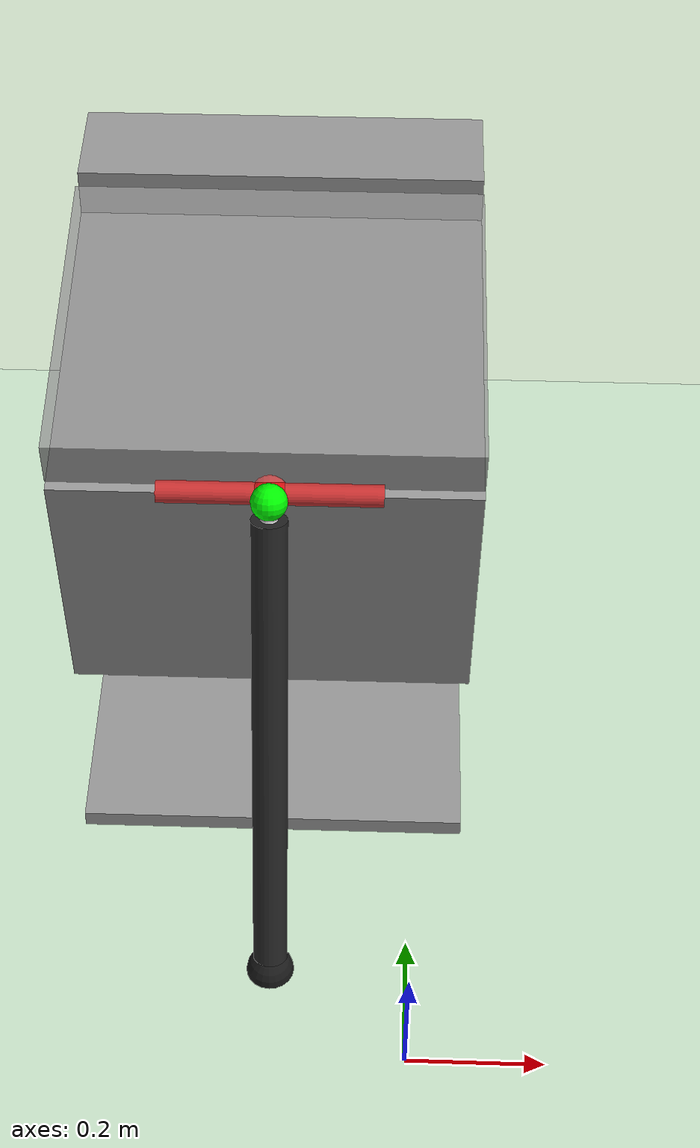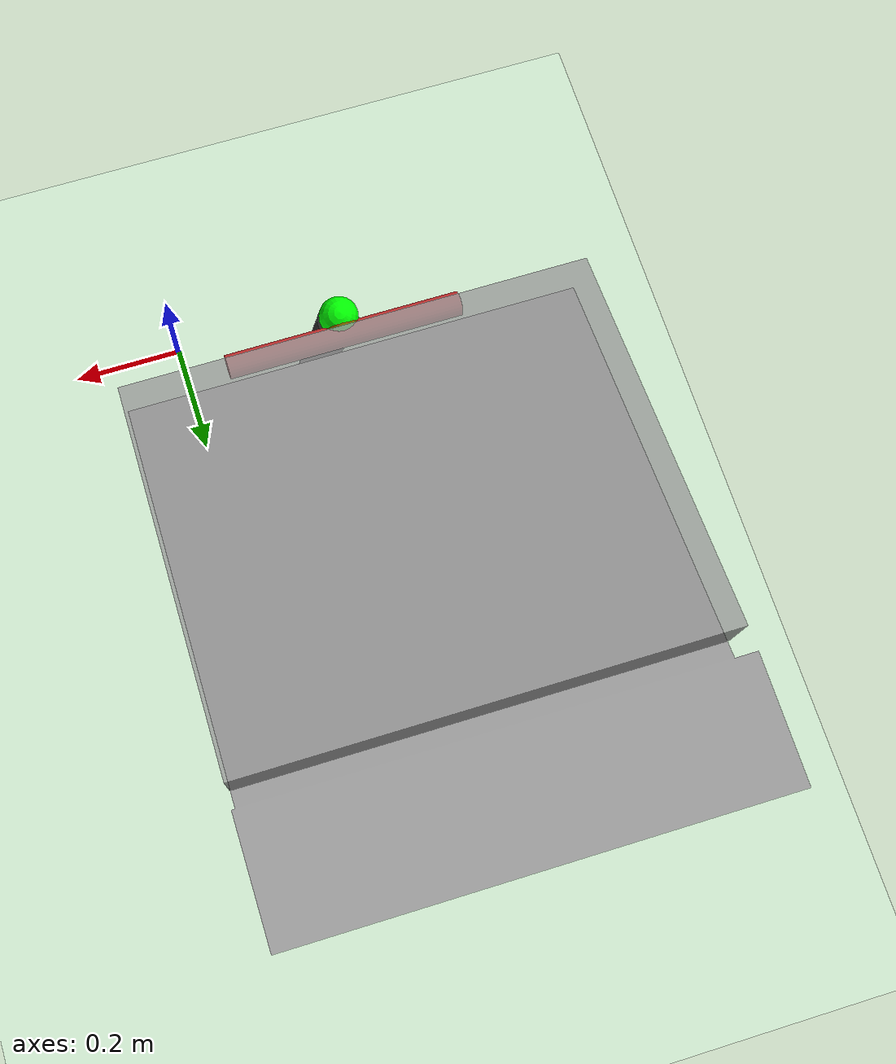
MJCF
<mujoco model="Test_efficold_pneumatic_cylinder">

  <compiler angle="radian"/>

  <option timestep="0.002" gravity="0 0 -9.81"/>

  <asset>
    <mesh name="frigo_mesh" file="efficold_corpo.obj"/>
    <mesh name="porta_mesh" file="efficold_porta.obj"/>
  </asset>

  <worldbody>
    <geom name="pavimento" type="plane" size="5 5 0.1" rgba="0.8 0.9 0.8 1"/>
    <light directional="true" diffuse="0.8 0.8 0.8" specular="0.2 0.2 0.2" pos="0 0 5" dir="0 0 -1" castshadow="false"/>

    <body name="supporto_pneumatico" pos="-0.2 0.15 0.00">
        <geom name="supporto_base" type="sphere" size="0.035" rgba="0.1 0.1 0.1 1" contype="0" conaffinity="0"/>
        <site name="snodo_fisso_cilindro" pos="0 0 0" size="0.025" rgba="1 0 0 1"/>

        <body name="canna_cilindro" pos="0 0 0" zaxis="0 0.24 0.85">
            <joint name="snodo_base_cilindro" type="ball" damping="0.05"/>
            <inertial pos="0 0 0.35" mass="0.8" diaginertia="0.014 0.014 0.0025"/>
            <geom name="canna_visual" type="cylinder" pos="0 0 0.38" size="0.025 0.38" rgba="0.15 0.15 0.15 1" contype="0" conaffinity="0"/>

            <body name="stelo_cilindro" pos="0 0 0">
            <joint name="corsa_cilindro" type="slide" axis="0 0 1" range="0 0.51" limited="true" damping="20" frictionloss="5"/>
            <inertial pos="0 0 0.41" mass="0.35" diaginertia="0.006 0.006 0.001"/>

            <!-- geom leggermente allungato per coprire il nuovo punto di aggancio a 0.786 -->
            <geom name="stelo_visual" type="cylinder" pos="0 0 0.39" size="0.012 0.41" rgba="0.85 0.85 0.85 1" contype="0" conaffinity="0"/>

            <!-- CORRETTO: da 0.71 a 0.786 -> a corsa_cilindro=0 coincide esattamente con target_maniglia
                 (distanza base->maniglia verificata numericamente = 0.7863 m) -->
            <site name="punta_stelo" pos="0 0 0.786" size="0.025" rgba="0 1 0 1"/>
            <geom name="snodo_mobile_visual" type="sphere" pos="0 0 0.786" size="0.025" rgba="0 1 0 1" contype="0" conaffinity="0"/>
            </body>
        </body>
    </body>

    <!-- Banco frigo Efficold: struttura invariata -->
    <body name="banco_frigo" pos="-0.5 0.4 0">
      <geom type="mesh" mesh="frigo_mesh" rgba="0.6 0.6 0.6 1" contype="0" conaffinity="0"/>

      <body name="porta" pos="0 0 0">
        <joint name="giunto_porta" type="hinge" pos="-0.2 0.475 0.8" axis="1 0 0" range="-2.0944 0" limited="true" damping="2.0" frictionloss="1.86" stiffness="0" springref="0"/>
        <inertial pos="0.15 0.475 0.525" mass="9" diaginertia="0.23 0.23 0.23"/>
        <geom type="mesh" mesh="porta_mesh" rgba="0.6 0.6 0.6 0.8" contype="0" conaffinity="0"/>

        <body name="maniglia_body" pos="0.3 -0.014 0.75" euler="0 1.57 0">
          <geom name="maniglia" type="cylinder" size="0.015 0.15" rgba="0.8 0.2 0.2 1" contype="0" conaffinity="0"/>
          <site name="target_maniglia" pos="0 0 0" size="0.025" rgba="1 0 0 0.5"/>
        </body>
      </body>
    </body>
  </worldbody>

  <equality>
    <connect name="snodo_stelo_maniglia" site1="punta_stelo" site2="target_maniglia" solimp="0.9 0.95 0.001" solref="0.02 1"/>
  </equality>

  <actuator>
    <motor name="forza_pneumatica" joint="corsa_cilindro" gear="1" ctrllimited="true" ctrlrange="-100 100"/>
  </actuator>

  <!-- Sensori -->
  <sensor>
    <jointpos name="angolo_porta" joint="giunto_porta"/>
    <jointvel name="velocita_porta" joint="giunto_porta"/>
    <jointpos name="estensione_cilindro" joint="corsa_cilindro"/>
    <jointvel name="velocita_stelo" joint="corsa_cilindro"/>
    <framepos name="posizione_punta_stelo" objtype="site" objname="punta_stelo"/>
    <framepos name="posizione_maniglia" objtype="site" objname="target_maniglia"/>
  </sensor>

</mujoco>
